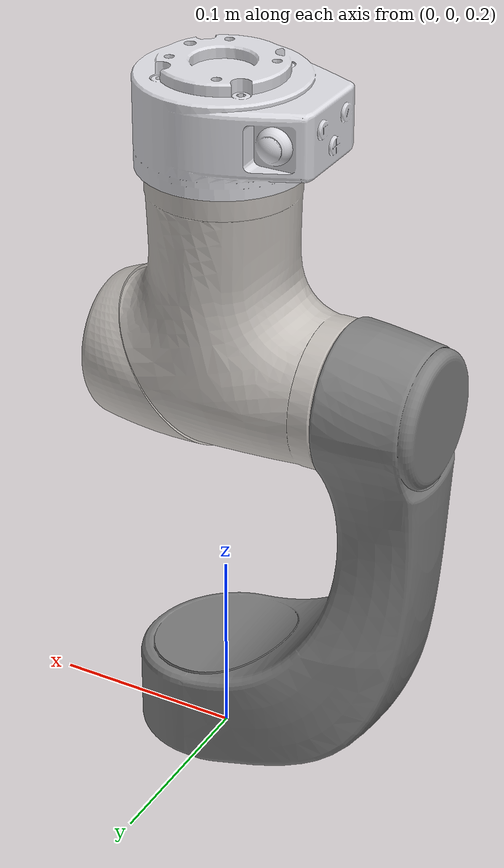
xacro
<robot
  name="elfin3" xmlns:xacro="http://www.ros.org/wiki/xacro">

  <xacro:include filename="$(find elfin_description)/urdf/materials.xacro" />

  <xacro:include filename="$(find elfin_description)/urdf/modules/modules.gazebo" />

  <xacro:include filename="$(find elfin_description)/urdf/modules/modules_transmission.xacro" />

  <xacro:property name="PI" value="3.1415926535897931"/>

  <xacro:property name="density" value="3.09"/>

  <link name="world"/>

  <joint name="world_base" type="fixed">
    <origin
      xyz="0 0 0"
      rpy="0 0 0" />
    <parent
      link="world" />
    <child
      link="elfin_base" />
  </joint>

  <link name="elfin_base"/>

  <joint name="elfin_module_base_joint" type="fixed">
    <origin
      xyz="0 0 0.2"
      rpy="0 0 0" />
    <parent
      link="elfin_base" />
    <child
      link="elfin_module_link" />
  </joint>

<link
    name="elfin_module_link">
    <inertial>
      <origin
        xyz="-0.055318 3.0677E-06 0.099673"
        rpy="0 0 0" />
      <mass value="${0.37026646381*density}"/>
      <inertia
      ixx="${0.00238279*density}" ixy="${0.00082955*density}" ixz="${1.1e-07*density}"
      iyy="${0.00095758*density}" iyz="${-3.2e-07*density}"
      izz="${0.00285161*density}"/>
    </inertial>
    <visual>
      <origin
        xyz="0 0 0"
        rpy="0 0 0" />
      <geometry>
        <mesh
          filename="package://elfin_description/meshes/elfin3/elfin_link4.STL" />
      </geometry>
      <material
        name="metal_grey"/>
    </visual>
    <collision>
      <origin
        xyz="0 0 0"
        rpy="0 0 0" />
      <geometry>
        <mesh
          filename="package://elfin_description/meshes/elfin3/elfin_link4.STL" />
      </geometry>
    </collision>
  </link>

  <link
    name="elfin_module_link1">
    <inertial>
      <origin
        xyz="3.7144E-06 0.039279 -0.043638"
        rpy="0 0 0" />
      <mass value="${0.807027243448*density}"/>
      <inertia
      ixx="${0.00193719*density}" ixy="${0.00047145*density}" ixz="${2e-08*density}"
      iyy="${0.00112857*density}" iyz="${-1.1e-07*density}"
      izz="${0.00245655*density}"/>
    </inertial>
    <visual>
      <origin
        xyz="0 0 0"
        rpy="0 0 0" />
      <geometry>
        <mesh
          filename="package://elfin_description/meshes/elfin3/elfin_link5.STL" />
      </geometry>
      <material
        name="metal"/>
    </visual>
    <collision>
      <origin
        xyz="0 0 0"
        rpy="0 0 0" />
      <geometry>
        <mesh
          filename="package://elfin_description/meshes/elfin3/elfin_link5.STL" />
      </geometry>
    </collision>
  </link>
  <joint
    name="elfin_module_joint1"
    type="revolute">
     <origin
      xyz="-0.06025 0 0.219"
      rpy="1.5708 0 -1.5708" />
    <parent
      link="elfin_module_link" />
    <child
      link="elfin_module_link1" />
     <axis
      xyz="0 0 -1" />
    <limit
      lower="-2.56"
      upper="2.56"
      effort="34"
      velocity="1.57" />
  </joint>

<link
    name="elfin_module_link2">
   <inertial>
      <origin
        xyz="-0.0070896 -0.00016176 0.034853"
        rpy="0 0 0" />
      <mass value="${0.147312*density}"/>
      <inertia
      ixx="${0.00019407*density}" ixy="${1.4e-06*density}" ixz="${-2.89e-06*density}"
      iyy="${0.00019592*density}" iyz="${5e-08*density}"
      izz="${0.00019496*density}"/>
    </inertial>
    <visual>
      <origin
        xyz="0 0 0"
        rpy="0 0 0" />
      <geometry>
        <mesh
          filename="package://elfin_description/meshes/elfin3/elfin_link6.STL" />
      </geometry>
      <material
        name="metal_white"/>
    </visual>
    <collision>
      <origin
        xyz="0 0 0"
        rpy="0 0 0" />
      <geometry>
        <mesh
          filename="package://elfin_description/meshes/elfin3/elfin_link6.STL" />
      </geometry>
    </collision>
  </link>
  <joint
    name="elfin_module_joint2"
    type="revolute">
   <origin
      xyz="0 0.10075 -0.06025"
      rpy="0 1.5645 1.5734" />
    <parent
      link="elfin_module_link1" />
    <child
      link="elfin_module_link2" />
     <axis
      xyz="0 0 -1" />
    <limit
      lower="-3.14"
      upper="3.14"
      effort="34"
      velocity="1.57" />
  </joint>

</robot>

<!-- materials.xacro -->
<robot xmlns:xacro="http://www.ros.org/wiki/xacro">

  <material name="black">
    <color rgba="0.0 0.0 0.0 1.0"/>
  </material>

  <material name="blue">
    <color rgba="0.0 0.0 0.8 1.0"/>
  </material>

  <material name="green">
    <color rgba="0.0 0.8 0.0 1.0"/>
  </material>

  <material name="grey">
    <color rgba="0.2 0.2 0.2 1.0"/>
  </material>

  <material name="orange">
    <color rgba="${255/255} ${108/255} ${10/255} 1.0"/>
  </material>

  <material name="brown">
    <color rgba="${222/255} ${207/255} ${195/255} 1.0"/>
  </material>

  <material name="red">
    <color rgba="0.8 0.0 0.0 1.0"/>
  </material>

  <material name="white">
    <color rgba="1.0 1.0 1.0 1.0"/>
  </material>

  <material name="metal">
    <color rgba="0.768627450980392 0.749019607843137 0.729411764705882 1" />
  </material>

  <material name="metal_grey">
    <color rgba="0.501960784313725 0.501960784313725 0.501960784313725 1" />
  </material>

  <material name="metal_white">
    <color rgba="0.866666666666667 0.866666666666667 0.890196078431373 1" />
  </material>

</robot>
